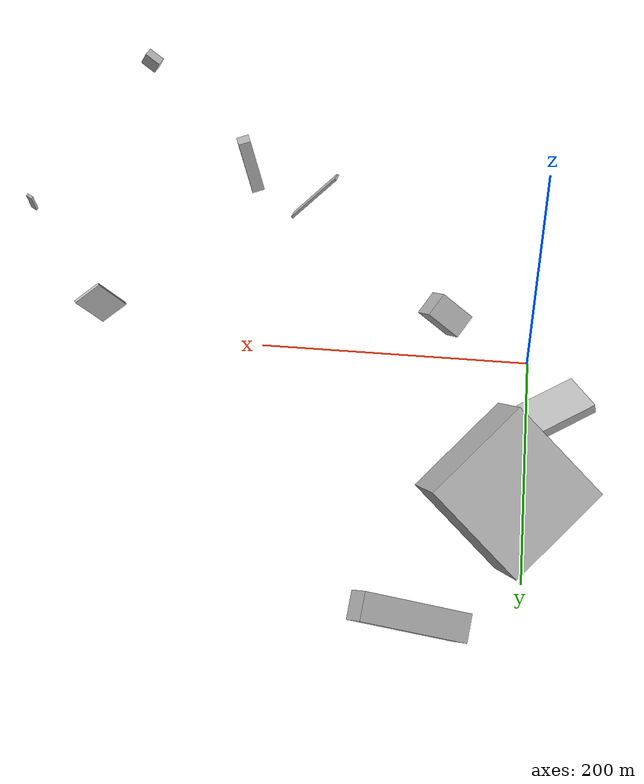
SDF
<sdf version="1.6">
 <world name="default">
  <scene>
   <sky><clouds><speed>12</speed></clouds></sky>
   <ambient>0.4 0.4 0.4 1</ambient>
   <background>0.7 0.7 0.7 1</background>
   <shadows>1</shadows>
  </scene>
  <gravity>0 0 -9.8066</gravity>
  <magnetic_field>6e-06 2.3e-05 -4.2e-05</magnetic_field>
  <physics default="0" name="default_physics" type="ode">
   <ode>
    <solver>
     <type>quick</type>
     <iters>10</iters>
     <sor>1.0</sor>
     <use_dynamic_moi_rescaling>0</use_dynamic_moi_rescaling>
    </solver>
    <constraints>
     <cfm>0</cfm>
     <erp>0.2</erp>
     <contact_max_correcting_vel>100</contact_max_correcting_vel>
     <contact_surface_layer>0.001</contact_surface_layer>
    </constraints>
   </ode>
   <max_step_size>0.004</max_step_size>
   <real_time_factor>1</real_time_factor>
   <real_time_update_rate>250</real_time_update_rate>
  </physics>
  <light name="sun" type="directional">
   <pose>0 0 10 0 0 0</pose>
   <diffuse>0.8 0.8 0.8 1</diffuse>
   <specular>0.2 0.2 0.2 1</specular>
   <attenuation>
    <range>1000</range>
    <constant>0.9</constant>
    <linear>0.01</linear>
    <quadratic>0.001</quadratic>
   </attenuation>
   <direction>-0.5 0.1 -0.9</direction>
  </light>
  <model name="building_1">
   <static>0</static>
   <pose>9.829479950926473 204.04300711969356 109.40134450390838 2.655855624622081 -0.570895703881958 -0.5226032566924369</pose>
   <link name="link">
    <gravity>0</gravity>
    <pose>0 0 33.5 0 0 0</pose>
    <collision name="collision"><geometry><box><size>80 80 67</size></box></geometry></collision>
    <visual name="visual">
     <cast_shadows>0</cast_shadows>
     <geometry><box><size>80 80 67</size></box></geometry>
     <material>
      <script>
       <uri>model://HANNAS_wall/materials/scripts</uri>
       <uri>model://HANNAS_wall/materials/textures</uri>
       <name>vrc/HANNAS_wall</name>
      </script>
     </material>
    </visual>
   </link>
  </model>
  <model name="building_2">
   <static>0</static>
   <pose>305.0201734671002 29.72441840973695 60.922107566523394 -0.5573819886536203 -0.0568215946852982 -1.0742633171387668</pose>
   <link name="link">
    <gravity>0</gravity>
    <pose>0 0 18.5 0 0 0</pose>
    <collision name="collision"><geometry><box><size>2 22 37</size></box></geometry></collision>
    <visual name="visual">
     <cast_shadows>0</cast_shadows>
     <geometry><box><size>2 22 37</size></box></geometry>
     <material>
      <script>
       <uri>model://HANNAS_wall/materials/scripts</uri>
       <uri>model://HANNAS_wall/materials/textures</uri>
       <name>vrc/HANNAS_wall</name>
      </script>
     </material>
    </visual>
   </link>
  </model>
  <model name="building_3">
   <static>0</static>
   <pose>208.16867765138034 -52.52250657542645 142.50870878885075 1.7708000432623685 -0.3939095693029771 1.81337081936656</pose>
   <link name="link">
    <gravity>0</gravity>
    <pose>0 0 4.5 0 0 0</pose>
    <collision name="collision"><geometry><box><size>14 39 9</size></box></geometry></collision>
    <visual name="visual">
     <cast_shadows>0</cast_shadows>
     <geometry><box><size>14 39 9</size></box></geometry>
     <material>
      <script>
       <uri>model://HANNAS_wall/materials/scripts</uri>
       <uri>model://HANNAS_wall/materials/textures</uri>
       <name>vrc/HANNAS_wall</name>
      </script>
     </material>
    </visual>
   </link>
  </model>
  <model name="building_4">
   <static>0</static>
   <pose>319.13356153075404 -277.7212293630023 34.70415752182851 -2.701307094227175 -0.11633217848599858 -2.0343957199900764</pose>
   <link name="link">
    <gravity>0</gravity>
    <pose>0 0 7.5 0 0 0</pose>
    <collision name="collision"><geometry><box><size>7 14 15</size></box></geometry></collision>
    <visual name="visual">
     <cast_shadows>0</cast_shadows>
     <geometry><box><size>7 14 15</size></box></geometry>
     <material>
      <script>
       <uri>model://HANNAS_wall/materials/scripts</uri>
       <uri>model://HANNAS_wall/materials/textures</uri>
       <name>vrc/HANNAS_wall</name>
      </script>
     </material>
    </visual>
   </link>
  </model>
  <model name="building_5">
   <static>0</static>
   <pose>73.68296715606749 247.42286177389497 39.54762577001265 -2.1826394347358136 -0.43655280457377665 0.15544970569245398</pose>
   <link name="link">
    <gravity>0</gravity>
    <pose>0 0 10.0 0 0 0</pose>
    <collision name="collision"><geometry><box><size>80 22 20</size></box></geometry></collision>
    <visual name="visual">
     <cast_shadows>0</cast_shadows>
     <geometry><box><size>80 22 20</size></box></geometry>
     <material>
      <script>
       <uri>model://HANNAS_wall/materials/scripts</uri>
       <uri>model://HANNAS_wall/materials/textures</uri>
       <name>vrc/HANNAS_wall</name>
      </script>
     </material>
    </visual>
   </link>
  </model>
  <model name="building_6">
   <static>0</static>
   <pose>7.32200747792443 92.51492107912604 38.0737325675615 0.8360106573164496 -1.4330195847863543 -0.25051468500444135</pose>
   <link name="link">
    <gravity>0</gravity>
    <pose>0 0 27.5 0 0 0</pose>
    <collision name="collision"><geometry><box><size>8 31 55</size></box></geometry></collision>
    <visual name="visual">
     <cast_shadows>0</cast_shadows>
     <geometry><box><size>8 31 55</size></box></geometry>
     <material>
      <script>
       <uri>model://HANNAS_wall/materials/scripts</uri>
       <uri>model://HANNAS_wall/materials/textures</uri>
       <name>vrc/HANNAS_wall</name>
      </script>
     </material>
    </visual>
   </link>
  </model>
  <model name="building_7">
   <static>0</static>
   <pose>389.6519747310763 -97.39885868341221 39.48350335615367 1.99645181392442 0.2595707528295978 2.707630983634873</pose>
   <link name="link">
    <gravity>0</gravity>
    <pose>0 0 1.0 0 0 0</pose>
    <collision name="collision"><geometry><box><size>5 33 2</size></box></geometry></collision>
    <visual name="visual">
     <cast_shadows>0</cast_shadows>
     <geometry><box><size>5 33 2</size></box></geometry>
     <material>
      <script>
       <uri>model://HANNAS_wall/materials/scripts</uri>
       <uri>model://HANNAS_wall/materials/textures</uri>
       <name>vrc/HANNAS_wall</name>
      </script>
     </material>
    </visual>
   </link>
  </model>
  <model name="building_8">
   <static>0</static>
   <pose>53.84915832415559 33.90918994251721 76.82252932133503 -0.8786700918649569 -0.4686941146318433 -2.209187265351412</pose>
   <link name="link">
    <gravity>0</gravity>
    <pose>0 0 13.5 0 0 0</pose>
    <collision name="collision"><geometry><box><size>18 26 27</size></box></geometry></collision>
    <visual name="visual">
     <cast_shadows>0</cast_shadows>
     <geometry><box><size>18 26 27</size></box></geometry>
     <material>
      <script>
       <uri>model://HANNAS_wall/materials/scripts</uri>
       <uri>model://HANNAS_wall/materials/textures</uri>
       <name>vrc/HANNAS_wall</name>
      </script>
     </material>
    </visual>
   </link>
  </model>
  <model name="building_9">
   <static>0</static>
   <pose>171.41245402789687 -136.37719008387919 28.45718010890112 1.3356007524755167 -0.9389411051876054 3.1126753016645194</pose>
   <link name="link">
    <gravity>0</gravity>
    <pose>0 0 3.5 0 0 0</pose>
    <collision name="collision"><geometry><box><size>58 2 7</size></box></geometry></collision>
    <visual name="visual">
     <cast_shadows>0</cast_shadows>
     <geometry><box><size>58 2 7</size></box></geometry>
     <material>
      <script>
       <uri>model://HANNAS_wall/materials/scripts</uri>
       <uri>model://HANNAS_wall/materials/textures</uri>
       <name>vrc/HANNAS_wall</name>
      </script>
     </material>
    </visual>
   </link>
  </model>
 </world>
</sdf>
